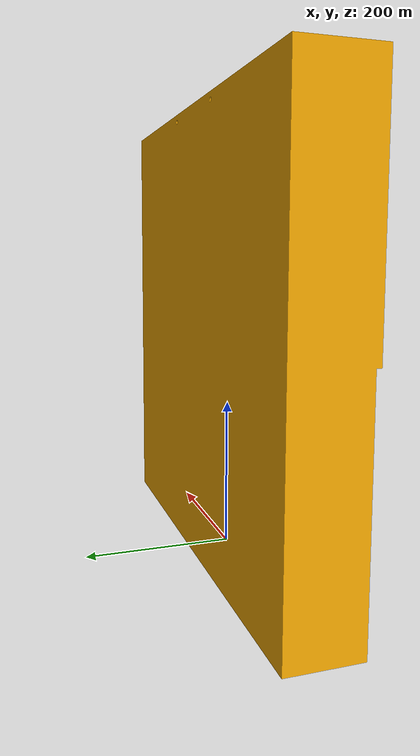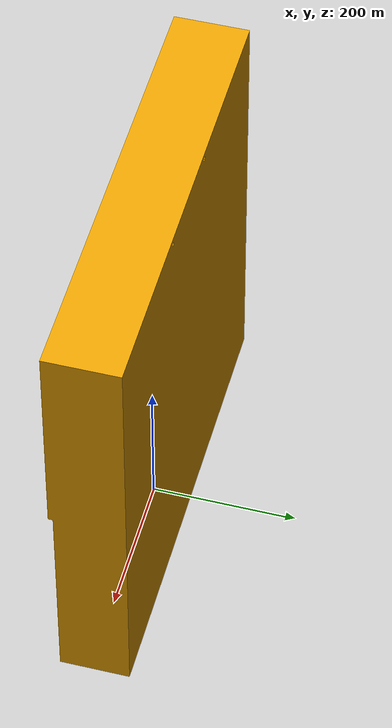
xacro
<?xml version="1.0"?>
<robot name="wall_plain"
       xmlns:xacro="http://ros.org/wiki/xacro">

  <link name="wall_plain" >
    <visual>
      <origin xyz="0 0 0" rpy="0 0 0" />
      <geometry>
	<mesh filename="package://hydra/models/walls/wall_plain/wall_plain.stl"/>
      </geometry>
    </visual>
    <collision>
      <origin xyz="0 0 0" rpy="0 0 0" />
      <geometry>
	<mesh filename="package://hydra/models/walls/wall_plain/wall_plain.stl"/>
      </geometry>
    </collision>
    <inertial>
      <mass value="5.29" />
      <inertia ixx="0.01" ixy="0.005" ixz="0.0003" iyy="0.02" iyz="0.00004" izz="0.02" />
    </inertial>
  </link>

</robot>
